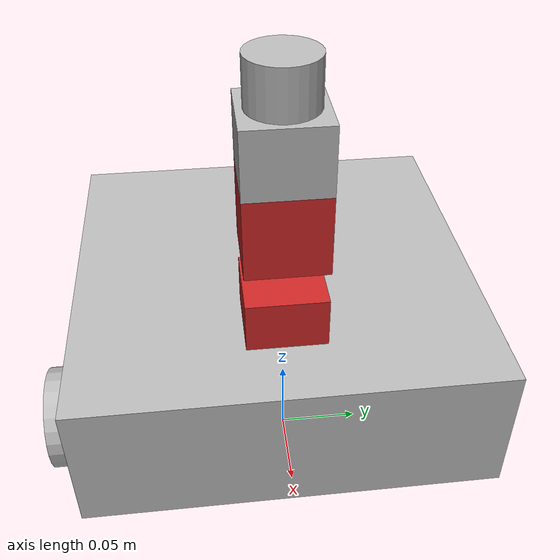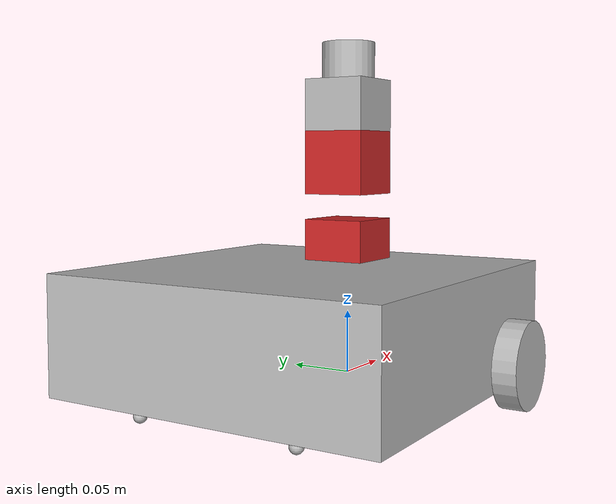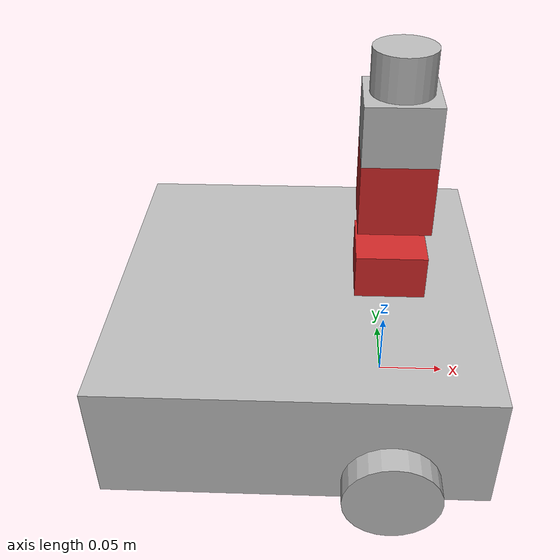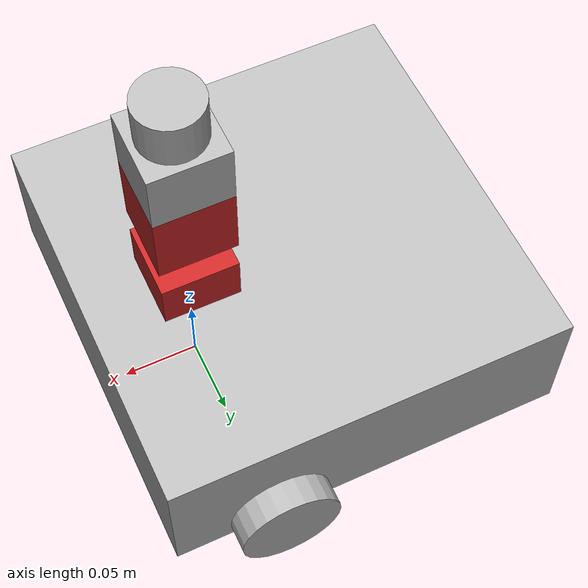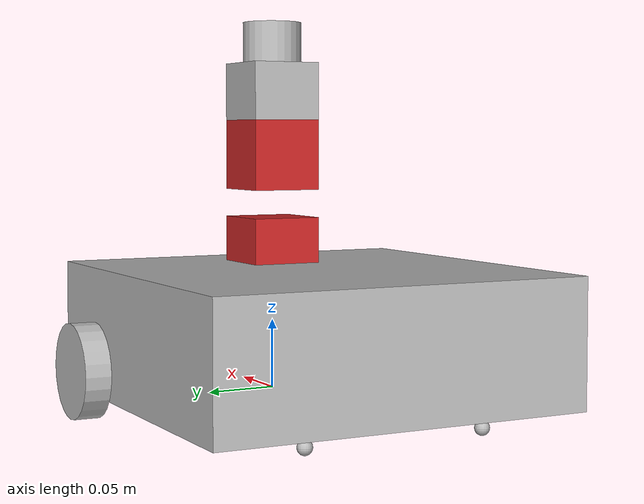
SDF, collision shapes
<?xml version='1.0'?>
<sdf version='1.7'>
  <model name='Robot'>
    <link name='base_link'>
      <inertial>
        <pose>-0.064 0 0.048 0 -0 0</pose>
        <inertia>
          <ixx>3.25608</ixx>
          <ixy>0</ixy>
          <ixz>0</ixz>
          <iyy>3.25608</iyy>
          <iyz>0</iyz>
          <izz>5.85208</izz>
        </inertia>
        <mass>1.0</mass>
      </inertial>
      <self_collide>0</self_collide>
      <enable_wind>0</enable_wind>
      <kinematic>0</kinematic>
      <pose>0 0 0 0 -0 0</pose>
      <gravity>1</gravity>
      <visual name='base_visual'>
        <pose>-0.064 0 0 0 -0 0</pose>
        <geometry>
          <mesh>
            <uri>model://turtlebot3_common_meshes/waffle_base.dae</uri>
            <scale>0.001 0.001 0.001</scale>
          </mesh>
        </geometry>
        <material>
          <shader type='pixel'>
            <normal_map>__default__</normal_map>
          </shader>
        </material>
        <transparency>0</transparency>
        <cast_shadows>1</cast_shadows>
      </visual>
      <collision name='base_collision'>
        <laser_retro>0</laser_retro>
        <max_contacts>10</max_contacts>
        <pose>-0.064 0 0.048 0 -0 0</pose>
        <geometry>
          <box>
            <size>0.265 0.265 0.089</size>
          </box>
        </geometry>
        <surface>
          <friction>
            <ode>
              <mu>1</mu>
              <mu2>1</mu2>
              <fdir1>0 0 0</fdir1>
              <slip1>0</slip1>
              <slip2>0</slip2>
            </ode>
            <torsional>
              <coefficient>1</coefficient>
              <patch_radius>0</patch_radius>
              <surface_radius>0</surface_radius>
              <use_patch_radius>1</use_patch_radius>
              <ode>
                <slip>0</slip>
              </ode>
            </torsional>
          </friction>
          <bounce>
            <restitution_coefficient>0</restitution_coefficient>
            <threshold>1e+06</threshold>
          </bounce>
          <contact>
            <collide_without_contact>0</collide_without_contact>
            <collide_without_contact_bitmask>1</collide_without_contact_bitmask>
            <collide_bitmask>1</collide_bitmask>
            <ode>
              <soft_cfm>0</soft_cfm>
              <soft_erp>0.2</soft_erp>
              <kp>1e+13</kp>
              <kd>1</kd>
              <max_vel>0.01</max_vel>
              <min_depth>0</min_depth>
            </ode>
            <bullet>
              <split_impulse>1</split_impulse>
              <split_impulse_penetration_threshold>-0.01</split_impulse_penetration_threshold>
              <soft_cfm>0</soft_cfm>
              <soft_erp>0.2</soft_erp>
              <kp>1e+13</kp>
              <kd>1</kd>
            </bullet>
          </contact>
        </surface>
      </collision>
      <collision name='right_caster_collision'>
        <laser_retro>0</laser_retro>
        <max_contacts>10</max_contacts>
        <pose>-0.177 -0.064 -0.004 0 -0 0</pose>
        <geometry>
          <sphere>
            <radius>0.005</radius>
          </sphere>
        </geometry>
        <surface>
          <friction>
            <ode>
              <mu>100000</mu>
              <mu2>100000</mu2>
              <fdir1>0 0 0</fdir1>
              <slip1>0</slip1>
              <slip2>0</slip2>
            </ode>
            <torsional>
              <coefficient>1</coefficient>
              <patch_radius>0</patch_radius>
              <surface_radius>0</surface_radius>
              <use_patch_radius>1</use_patch_radius>
              <ode>
                <slip>0</slip>
              </ode>
            </torsional>
          </friction>
          <bounce>
            <restitution_coefficient>0</restitution_coefficient>
            <threshold>1e+06</threshold>
          </bounce>
          <contact>
            <collide_without_contact>0</collide_without_contact>
            <collide_without_contact_bitmask>1</collide_without_contact_bitmask>
            <collide_bitmask>1</collide_bitmask>
            <ode>
              <soft_cfm>0</soft_cfm>
              <soft_erp>0.2</soft_erp>
              <kp>1e+13</kp>
              <kd>1</kd>
              <max_vel>0.01</max_vel>
              <min_depth>0</min_depth>
            </ode>
            <bullet>
              <split_impulse>1</split_impulse>
              <split_impulse_penetration_threshold>-0.01</split_impulse_penetration_threshold>
              <soft_cfm>0</soft_cfm>
              <soft_erp>0.2</soft_erp>
              <kp>1e+13</kp>
              <kd>1</kd>
            </bullet>
          </contact>
        </surface>
      </collision>
      <collision name='left_caster_collision'>
        <laser_retro>0</laser_retro>
        <max_contacts>10</max_contacts>
        <pose>-0.177 0.064 -0.004 0 -0 0</pose>
        <geometry>
          <sphere>
            <radius>0.005</radius>
          </sphere>
        </geometry>
        <surface>
          <friction>
            <ode>
              <mu>100000</mu>
              <mu2>100000</mu2>
              <fdir1>0 0 0</fdir1>
              <slip1>0</slip1>
              <slip2>0</slip2>
            </ode>
            <torsional>
              <coefficient>1</coefficient>
              <patch_radius>0</patch_radius>
              <surface_radius>0</surface_radius>
              <use_patch_radius>1</use_patch_radius>
              <ode>
                <slip>0</slip>
              </ode>
            </torsional>
          </friction>
          <bounce>
            <restitution_coefficient>0</restitution_coefficient>
            <threshold>1e+06</threshold>
          </bounce>
          <contact>
            <collide_without_contact>0</collide_without_contact>
            <collide_without_contact_bitmask>1</collide_without_contact_bitmask>
            <collide_bitmask>1</collide_bitmask>
            <ode>
              <soft_cfm>0</soft_cfm>
              <soft_erp>0.2</soft_erp>
              <kp>1e+13</kp>
              <kd>1</kd>
              <max_vel>0.01</max_vel>
              <min_depth>0</min_depth>
            </ode>
            <bullet>
              <split_impulse>1</split_impulse>
              <split_impulse_penetration_threshold>-0.01</split_impulse_penetration_threshold>
              <soft_cfm>0</soft_cfm>
              <soft_erp>0.2</soft_erp>
              <kp>1e+13</kp>
              <kd>1</kd>
            </bullet>
          </contact>
        </surface>
      </collision>
    </link>
    <link name='camera'>
      <inertial>
        <mass>0.1</mass>
        <pose>0 0 0 0 -0 0</pose>
        <inertia>
          <ixx>1</ixx>
          <ixy>0</ixy>
          <ixz>0</ixz>
          <iyy>1</iyy>
          <iyz>0</iyz>
          <izz>1</izz>
        </inertia>
      </inertial>
      <pose>-0 0 0.1 0 -0 0</pose>
      <sensor name='camera1' type='camera'>
        <update_rate>30</update_rate>
        <camera name='head'>
          <horizontal_fov>1.8</horizontal_fov>
          <image>
            <width>1200</width>
            <height>1200</height>
            <format>R8G8B8</format>
          </image>
          <clip>
            <near>0.02</near>
            <far>300</far>
          </clip>
          <noise>
            <type>gaussian</type>
            <mean>0</mean>
            <stddev>0.007</stddev>
          </noise>
        </camera>
        <plugin name='camera_controller' filename='libgazebo_ros_camera.so'>
          <alwaysOn>1</alwaysOn>
          <updateRate>1</updateRate>
          <cameraName>rrbot/camera1</cameraName>
          <imageTopicName>image_raw</imageTopicName>
          <cameraInfoTopicName>camera_info</cameraInfoTopicName>
          <frameName>camera_link</frameName>
          <hackBaseline>0.07</hackBaseline>
          <distortionK1>0.0</distortionK1>
          <distortionK2>0.0</distortionK2>
          <distortionK3>0.0</distortionK3>
          <distortionT1>0.0</distortionT1>
          <distortionT2>0.0</distortionT2>
        </plugin>
      </sensor>
      <self_collide>0</self_collide>
      <enable_wind>0</enable_wind>
      <kinematic>0</kinematic>
      <visual name='cam_visual'>
        <geometry>
          <box>
            <size>0.05 0.05 0.05</size>
          </box>
        </geometry>
        <material>
          <script>
            <uri>file://media/materials/scripts/gazebo.material</uri>
            <name>Gazebo/Red</name>
          </script>
          <shader type='pixel'/>
        </material>
        <pose>0 0 0 0 -0 0</pose>
        <transparency>0</transparency>
        <cast_shadows>1</cast_shadows>
      </visual>
      <collision name='cam_collision'>
        <laser_retro>0</laser_retro>
        <max_contacts>10</max_contacts>
        <pose>0 0 0 0 -0 0</pose>
        <geometry>
          <box>
            <size>0.05 0.05 0.05</size>
          </box>
        </geometry>
        <surface>
          <friction>
            <ode>
              <mu>1</mu>
              <mu2>1</mu2>
              <fdir1>0 0 0</fdir1>
              <slip1>0</slip1>
              <slip2>0</slip2>
            </ode>
            <torsional>
              <coefficient>1</coefficient>
              <patch_radius>0</patch_radius>
              <surface_radius>0</surface_radius>
              <use_patch_radius>1</use_patch_radius>
              <ode>
                <slip>0</slip>
              </ode>
            </torsional>
          </friction>
          <bounce>
            <restitution_coefficient>0</restitution_coefficient>
            <threshold>1e+06</threshold>
          </bounce>
          <contact>
            <collide_without_contact>0</collide_without_contact>
            <collide_without_contact_bitmask>1</collide_without_contact_bitmask>
            <collide_bitmask>1</collide_bitmask>
            <ode>
              <soft_cfm>0</soft_cfm>
              <soft_erp>0.2</soft_erp>
              <kp>1e+13</kp>
              <kd>1</kd>
              <max_vel>0.01</max_vel>
              <min_depth>0</min_depth>
            </ode>
            <bullet>
              <split_impulse>1</split_impulse>
              <split_impulse_penetration_threshold>-0.01</split_impulse_penetration_threshold>
              <soft_cfm>0</soft_cfm>
              <soft_erp>0.2</soft_erp>
              <kp>1e+13</kp>
              <kd>1</kd>
            </bullet>
          </contact>
        </surface>
      </collision>
    </link>
    <link name='depth_camera'>
      <inertial>
        <mass>0.1</mass>
        <pose>0 0 0 0 -0 0</pose>
        <inertia>
          <ixx>1</ixx>
          <ixy>0</ixy>
          <ixz>0</ixz>
          <iyy>1</iyy>
          <iyz>0</iyz>
          <izz>1</izz>
        </inertia>
      </inertial>
      <pose>-0 -0 0.17 0 -0 0</pose>
      <sensor name='depth_camera' type='depth'>
        <update_rate>5</update_rate>
        <camera name='head'>
          <horizontal_fov>1.8</horizontal_fov>
          <image>
            <width>1200</width>
            <height>1200</height>
            <format>R8G8B8</format>
          </image>
          <clip>
            <near>0.01</near>
            <far>10</far>
          </clip>
          <depth_camera>
            <clip>
              <near>0.01</near>
              <far>10</far>
            </clip>
            <output>depths</output>
          </depth_camera>
          <noise>
            <type>gaussian</type>
            <mean>0</mean>
            <stddev>0.007</stddev>
          </noise>
        </camera>
        <plugin name='gazebo_ros_depth_camera' filename='libgazebo_ros_camera.so'>
          <alwaysOn>1</alwaysOn>
          <updateRate>5.0</updateRate>
          <cameraName>rrbot/depth_camera</cameraName>
          <frameName>depth_camera_link</frameName>
          <imageTopicName>/depth_camera/image_raw</imageTopicName>
          <cameraInfoTopicName>/depth_camera/camera_info</cameraInfoTopicName>
          <depthImageTopicName>/depth_camera/depth/image_raw</depthImageTopicName>
          <pointCloudTopicName>/depth_camera/points</pointCloudTopicName>
          <pointCloudCutoff>0.01</pointCloudCutoff>
          <pointCloudCutoffMax>10.0</pointCloudCutoffMax>
        </plugin>
      </sensor>
      <self_collide>0</self_collide>
      <enable_wind>0</enable_wind>
      <kinematic>0</kinematic>
      <visual name='cam_visual'>
        <geometry>
          <box>
            <size>0.05 0.05 0.05</size>
          </box>
        </geometry>
        <material>
          <script>
            <uri>file://media/materials/scripts/gazebo.material</uri>
            <name>Gazebo/Red</name>
          </script>
          <shader type='pixel'/>
        </material>
        <pose>0 0 0 0 -0 0</pose>
        <transparency>0</transparency>
        <cast_shadows>1</cast_shadows>
      </visual>
      <collision name='cam_collision'>
        <laser_retro>0</laser_retro>
        <max_contacts>10</max_contacts>
        <pose>0 0 0 0 -0 0</pose>
        <geometry>
          <box>
            <size>0.05 0.05 0.05</size>
          </box>
        </geometry>
        <surface>
          <friction>
            <ode>
              <mu>1</mu>
              <mu2>1</mu2>
              <fdir1>0 0 0</fdir1>
              <slip1>0</slip1>
              <slip2>0</slip2>
            </ode>
            <torsional>
              <coefficient>1</coefficient>
              <patch_radius>0</patch_radius>
              <surface_radius>0</surface_radius>
              <use_patch_radius>1</use_patch_radius>
              <ode>
                <slip>0</slip>
              </ode>
            </torsional>
          </friction>
          <bounce>
            <restitution_coefficient>0</restitution_coefficient>
            <threshold>1e+06</threshold>
          </bounce>
          <contact>
            <collide_without_contact>0</collide_without_contact>
            <collide_without_contact_bitmask>1</collide_without_contact_bitmask>
            <collide_bitmask>1</collide_bitmask>
            <ode>
              <soft_cfm>0</soft_cfm>
              <soft_erp>0.2</soft_erp>
              <kp>1e+13</kp>
              <kd>1</kd>
              <max_vel>0.01</max_vel>
              <min_depth>0</min_depth>
            </ode>
            <bullet>
              <split_impulse>1</split_impulse>
              <split_impulse_penetration_threshold>-0.01</split_impulse_penetration_threshold>
              <soft_cfm>0</soft_cfm>
              <soft_erp>0.2</soft_erp>
              <kp>1e+13</kp>
              <kd>1</kd>
            </bullet>
          </contact>
        </surface>
      </collision>
    </link>
    <link name='laser_link'>
      <inertial>
        <mass>0.1</mass>
        <pose>0 0 0 0 -0 0</pose>
        <inertia>
          <ixx>1</ixx>
          <ixy>0</ixy>
          <ixz>0</ixz>
          <iyy>1</iyy>
          <iyz>0</iyz>
          <izz>1</izz>
        </inertia>
      </inertial>
      <pose>0 0 0.23 0 -0 0</pose>
      <sensor name='laser' type='ray'>
        <pose>0.01 0 0.0175 0 -0 0</pose>
        <ray>
          <scan>
            <horizontal>
              <samples>181</samples>
              <resolution>0.2</resolution>
              <min_angle>-0.89</min_angle>
              <max_angle>0.89</max_angle>
            </horizontal>
            <vertical>
              <samples>1</samples>
              <min_angle>0</min_angle>
              <max_angle>0</max_angle>
            </vertical>
          </scan>
          <range>
            <min>0.08</min>
            <max>10</max>
            <resolution>0.01</resolution>
          </range>
        </ray>
        <always_on>1</always_on>
        <update_rate>10</update_rate>
        <visualize>1</visualize>
        <plugin name='laser' filename='libgazebo_ros_ray_sensor.so'>
          <ros>
            <namespace>/</namespace>
            <argument>--ros-args --remap ~/out:=scan</argument>
          </ros>
          <output_type>sensor_msgs/LaserScan</output_type>
        </plugin>
      </sensor>
      <self_collide>0</self_collide>
      <enable_wind>0</enable_wind>
      <kinematic>0</kinematic>
      <visual name='visual'>
        <geometry>
          <mesh>
            <uri>model://hokuyo/meshes/hokuyo.dae</uri>
          </mesh>
        </geometry>
        <material>
          <shader type='pixel'/>
        </material>
        <pose>0 0 0 0 -0 0</pose>
        <transparency>0</transparency>
        <cast_shadows>1</cast_shadows>
      </visual>
      <collision name='collision-base'>
        <laser_retro>0</laser_retro>
        <max_contacts>10</max_contacts>
        <pose>0 0 -0.0145 0 -0 0</pose>
        <geometry>
          <box>
            <size>0.05 0.05 0.041</size>
          </box>
        </geometry>
        <surface>
          <friction>
            <ode>
              <mu>3</mu>
              <mu2>3</mu2>
              <fdir1>0 0 0</fdir1>
              <slip1>0</slip1>
              <slip2>0</slip2>
            </ode>
            <torsional>
              <coefficient>1</coefficient>
              <patch_radius>0</patch_radius>
              <surface_radius>0</surface_radius>
              <use_patch_radius>1</use_patch_radius>
              <ode>
                <slip>0</slip>
              </ode>
            </torsional>
          </friction>
          <bounce>
            <restitution_coefficient>0</restitution_coefficient>
            <threshold>1e+06</threshold>
          </bounce>
          <contact>
            <collide_without_contact>0</collide_without_contact>
            <collide_without_contact_bitmask>1</collide_without_contact_bitmask>
            <collide_bitmask>1</collide_bitmask>
            <ode>
              <soft_cfm>0</soft_cfm>
              <soft_erp>0.2</soft_erp>
              <kp>1e+13</kp>
              <kd>1</kd>
              <max_vel>0.01</max_vel>
              <min_depth>0</min_depth>
            </ode>
            <bullet>
              <split_impulse>1</split_impulse>
              <split_impulse_penetration_threshold>-0.01</split_impulse_penetration_threshold>
              <soft_cfm>0</soft_cfm>
              <soft_erp>0.2</soft_erp>
              <kp>1e+13</kp>
              <kd>1</kd>
            </bullet>
          </contact>
        </surface>
      </collision>
      <collision name='collision-top'>
        <laser_retro>0</laser_retro>
        <max_contacts>10</max_contacts>
        <pose>0 0 0.0205 0 -0 0</pose>
        <geometry>
          <cylinder>
            <radius>0.021</radius>
            <length>0.029</length>
          </cylinder>
        </geometry>
        <surface>
          <friction>
            <ode>
              <mu>1</mu>
              <mu2>1</mu2>
              <fdir1>0 0 0</fdir1>
              <slip1>0</slip1>
              <slip2>0</slip2>
            </ode>
            <torsional>
              <coefficient>1</coefficient>
              <patch_radius>0</patch_radius>
              <surface_radius>0</surface_radius>
              <use_patch_radius>1</use_patch_radius>
              <ode>
                <slip>0</slip>
              </ode>
            </torsional>
          </friction>
          <bounce>
            <restitution_coefficient>0</restitution_coefficient>
            <threshold>1e+06</threshold>
          </bounce>
          <contact>
            <collide_without_contact>0</collide_without_contact>
            <collide_without_contact_bitmask>1</collide_without_contact_bitmask>
            <collide_bitmask>1</collide_bitmask>
            <ode>
              <soft_cfm>0</soft_cfm>
              <soft_erp>0.2</soft_erp>
              <kp>1e+13</kp>
              <kd>1</kd>
              <max_vel>0.01</max_vel>
              <min_depth>0</min_depth>
            </ode>
            <bullet>
              <split_impulse>1</split_impulse>
              <split_impulse_penetration_threshold>-0.01</split_impulse_penetration_threshold>
              <soft_cfm>0</soft_cfm>
              <soft_erp>0.2</soft_erp>
              <kp>1e+13</kp>
              <kd>1</kd>
            </bullet>
          </contact>
        </surface>
      </collision>
    </link>
    <link name='left_wheel'>
      <inertial>
        <pose>0 0.144 0.023 -1.57 0 0</pose>
        <inertia>
          <ixx>0.001</ixx>
          <ixy>0</ixy>
          <ixz>0</ixz>
          <iyy>0.001</iyy>
          <iyz>0</iyz>
          <izz>0.001</izz>
        </inertia>
        <mass>0.1</mass>
      </inertial>
      <self_collide>0</self_collide>
      <enable_wind>0</enable_wind>
      <kinematic>0</kinematic>
      <pose>0 0 0 0 -0 0</pose>
      <visual name='left_wheel_visual'>
        <pose>0 0.144 0.023 0 -0 0</pose>
        <geometry>
          <mesh>
            <uri>model://turtlebot3_common_meshes/tire.dae</uri>
            <scale>0.001 0.001 0.001</scale>
          </mesh>
        </geometry>
        <material>
          <shader type='pixel'/>
        </material>
        <transparency>0</transparency>
        <cast_shadows>1</cast_shadows>
      </visual>
      <collision name='left_wheel_collision'>
        <laser_retro>0</laser_retro>
        <max_contacts>10</max_contacts>
        <pose>0 0.144 0.023 -1.57 0 0</pose>
        <geometry>
          <cylinder>
            <radius>0.033</radius>
            <length>0.018</length>
          </cylinder>
        </geometry>
        <surface>
          <friction>
            <ode>
              <mu>100000</mu>
              <mu2>100000</mu2>
              <fdir1>0 0 0</fdir1>
              <slip1>0</slip1>
              <slip2>0</slip2>
            </ode>
            <torsional>
              <coefficient>1</coefficient>
              <patch_radius>0</patch_radius>
              <surface_radius>0</surface_radius>
              <use_patch_radius>1</use_patch_radius>
              <ode>
                <slip>0</slip>
              </ode>
            </torsional>
          </friction>
          <bounce>
            <restitution_coefficient>0</restitution_coefficient>
            <threshold>1e+06</threshold>
          </bounce>
          <contact>
            <collide_without_contact>0</collide_without_contact>
            <collide_without_contact_bitmask>1</collide_without_contact_bitmask>
            <collide_bitmask>1</collide_bitmask>
            <ode>
              <soft_cfm>0</soft_cfm>
              <soft_erp>0.2</soft_erp>
              <kp>1e+13</kp>
              <kd>1</kd>
              <max_vel>0.01</max_vel>
              <min_depth>0</min_depth>
            </ode>
            <bullet>
              <split_impulse>1</split_impulse>
              <split_impulse_penetration_threshold>-0.01</split_impulse_penetration_threshold>
              <soft_cfm>0</soft_cfm>
              <soft_erp>0.2</soft_erp>
              <kp>1e+13</kp>
              <kd>1</kd>
            </bullet>
          </contact>
        </surface>
      </collision>
    </link>
    <link name='right_wheel'>
      <inertial>
        <pose>0 -0.144 0.023 -1.57 0 0</pose>
        <inertia>
          <ixx>0.001</ixx>
          <ixy>0</ixy>
          <ixz>0</ixz>
          <iyy>0.001</iyy>
          <iyz>0</iyz>
          <izz>0.001</izz>
        </inertia>
        <mass>0.1</mass>
      </inertial>
      <self_collide>0</self_collide>
      <enable_wind>0</enable_wind>
      <kinematic>0</kinematic>
      <pose>0 0 0 0 -0 0</pose>
      <visual name='right_wheel_visual'>
        <pose>0 -0.144 0.023 0 -0 0</pose>
        <geometry>
          <mesh>
            <uri>model://turtlebot3_common_meshes/tire.dae</uri>
            <scale>0.001 0.001 0.001</scale>
          </mesh>
        </geometry>
        <material>
          <shader type='pixel'/>
        </material>
        <transparency>0</transparency>
        <cast_shadows>1</cast_shadows>
      </visual>
      <collision name='right_wheel_collision'>
        <laser_retro>0</laser_retro>
        <max_contacts>10</max_contacts>
        <pose>0 -0.144 0.023 -1.57 0 0</pose>
        <geometry>
          <cylinder>
            <radius>0.033</radius>
            <length>0.018</length>
          </cylinder>
        </geometry>
        <surface>
          <friction>
            <ode>
              <mu>100000</mu>
              <mu2>100000</mu2>
              <fdir1>0 0 0</fdir1>
              <slip1>0</slip1>
              <slip2>0</slip2>
            </ode>
            <torsional>
              <coefficient>1</coefficient>
              <patch_radius>0</patch_radius>
              <surface_radius>0</surface_radius>
              <use_patch_radius>1</use_patch_radius>
              <ode>
                <slip>0</slip>
              </ode>
            </torsional>
          </friction>
          <bounce>
            <restitution_coefficient>0</restitution_coefficient>
            <threshold>1e+06</threshold>
          </bounce>
          <contact>
            <collide_without_contact>0</collide_without_contact>
            <collide_without_contact_bitmask>1</collide_without_contact_bitmask>
            <collide_bitmask>1</collide_bitmask>
            <ode>
              <soft_cfm>0</soft_cfm>
              <soft_erp>0.2</soft_erp>
              <kp>1e+13</kp>
              <kd>1</kd>
              <max_vel>0.01</max_vel>
              <min_depth>0</min_depth>
            </ode>
            <bullet>
              <split_impulse>1</split_impulse>
              <split_impulse_penetration_threshold>-0.01</split_impulse_penetration_threshold>
              <soft_cfm>0</soft_cfm>
              <soft_erp>0.2</soft_erp>
              <kp>1e+13</kp>
              <kd>1</kd>
            </bullet>
          </contact>
        </surface>
      </collision>
    </link>
    <joint name='camera_joint' type='fixed'>
      <parent>base_link</parent>
      <child>camera</child>
      <pose>0 0 0 0 -0 0</pose>
      <physics>
        <ode>
          <limit>
            <cfm>0</cfm>
            <erp>0.2</erp>
          </limit>
          <suspension>
            <cfm>0</cfm>
            <erp>0.2</erp>
          </suspension>
        </ode>
      </physics>
    </joint>
    <joint name='depth_joint' type='fixed'>
      <parent>base_link</parent>
      <child>depth_camera</child>
      <pose>0 0 0 0 -0 0</pose>
      <physics>
        <ode>
          <limit>
            <cfm>0</cfm>
            <erp>0.2</erp>
          </limit>
          <suspension>
            <cfm>0</cfm>
            <erp>0.2</erp>
          </suspension>
        </ode>
      </physics>
    </joint>
    <joint name='laser_joint' type='fixed'>
      <parent>base_link</parent>
      <child>laser_link</child>
      <pose>0 0 0 0 -0 0</pose>
      <physics>
        <ode>
          <limit>
            <cfm>0</cfm>
            <erp>0.2</erp>
          </limit>
          <suspension>
            <cfm>0</cfm>
            <erp>0.2</erp>
          </suspension>
        </ode>
      </physics>
    </joint>
    <joint name='left_wheel_joint' type='revolute'>
      <parent>base_link</parent>
      <child>left_wheel</child>
      <pose>0 0.144 0.023 -1.57 0 0</pose>
      <axis>
        <xyz>0 0 1</xyz>
        <limit>
          <lower>-1e+16</lower>
          <upper>1e+16</upper>
          <effort>-1</effort>
          <velocity>-1</velocity>
        </limit>
        <dynamics>
          <spring_reference>0</spring_reference>
          <spring_stiffness>0</spring_stiffness>
          <damping>0</damping>
          <friction>0</friction>
        </dynamics>
      </axis>
      <physics>
        <ode>
          <limit>
            <cfm>0</cfm>
            <erp>0.2</erp>
          </limit>
          <suspension>
            <cfm>0</cfm>
            <erp>0.2</erp>
          </suspension>
        </ode>
      </physics>
    </joint>
    <joint name='right_wheel_joint' type='revolute'>
      <parent>base_link</parent>
      <child>right_wheel</child>
      <pose>0 -0.144 0.023 -1.57 0 0</pose>
      <axis>
        <xyz>0 0 1</xyz>
        <limit>
          <lower>-1e+16</lower>
          <upper>1e+16</upper>
          <effort>-1</effort>
          <velocity>-1</velocity>
        </limit>
        <dynamics>
          <spring_reference>0</spring_reference>
          <spring_stiffness>0</spring_stiffness>
          <damping>0</damping>
          <friction>0</friction>
        </dynamics>
      </axis>
      <physics>
        <ode>
          <limit>
            <cfm>0</cfm>
            <erp>0.2</erp>
          </limit>
          <suspension>
            <cfm>0</cfm>
            <erp>0.2</erp>
          </suspension>
        </ode>
      </physics>
    </joint>
    <static>0</static>
    <allow_auto_disable>1</allow_auto_disable>
    <plugin name='diff_drive' filename='libgazebo_ros_diff_drive.so'>
      <ros>
        <namespace>/</namespace>
        <remapping>cmd_vel:=cmd_vel</remapping>
        <remapping>odom:=odom</remapping>
      </ros>
      <left_joint>left_wheel_joint</left_joint>
      <right_joint>right_wheel_joint</right_joint>
      <wheel_separation>0.287</wheel_separation>
      <wheel_diameter>0.066</wheel_diameter>
      <max_wheel_torque>5.0</max_wheel_torque>
      <max_wheel_acceleration>1.0</max_wheel_acceleration>
      <publish_odom>1</publish_odom>
      <publish_odom_tf>1</publish_odom_tf>
      <publish_wheel_tf>1</publish_wheel_tf>
      <odometry_frame>odom</odometry_frame>
      <robot_base_frame>base_link</robot_base_frame>
    </plugin>
  </model>
</sdf>
